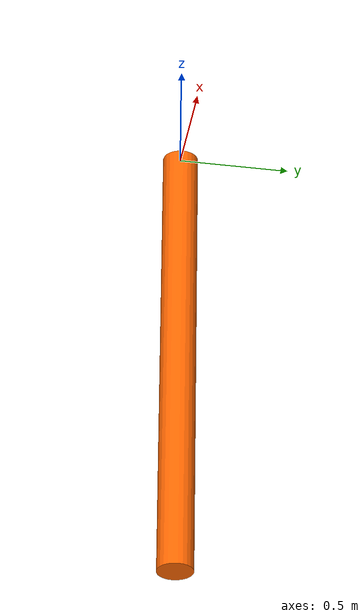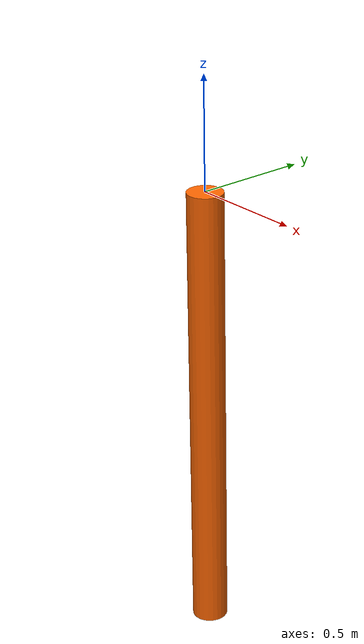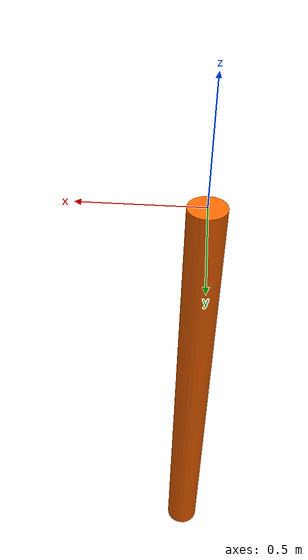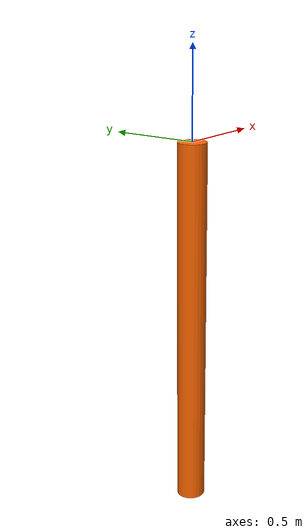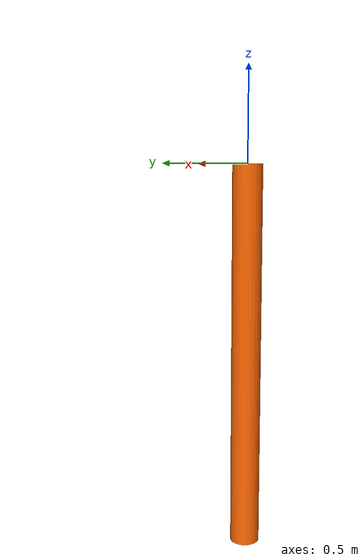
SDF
<?xml version="1.0"?>
<sdf version="1.9">
  <model name="marv_yellow_pole">
    <static>true</static>
    <link name="link">
      <visual name="pole">
        <pose>0 0 -1.05 0 0 0</pose>
        <geometry>
          <cylinder>
            <radius>0.08</radius>
            <length>2.1</length>
          </cylinder>
        </geometry>
        <material>
          <!-- Rustoleum Neon Orange (fluorescent) -->
          <ambient>0.95 0.32 0.0 1</ambient>
          <diffuse>1.0 0.40 0.0 1</diffuse>
          <specular>0.2 0.2 0.2 1</specular>
          <emissive>0.35 0.10 0.0 1</emissive>
        </material>
      </visual>
      <collision name="pole_collision">
        <pose>0 0 -1.05 0 0 0</pose>
        <geometry>
          <cylinder>
            <radius>0.08</radius>
            <length>2.1</length>
          </cylinder>
        </geometry>
      </collision>
    </link>
  </model>
</sdf>
